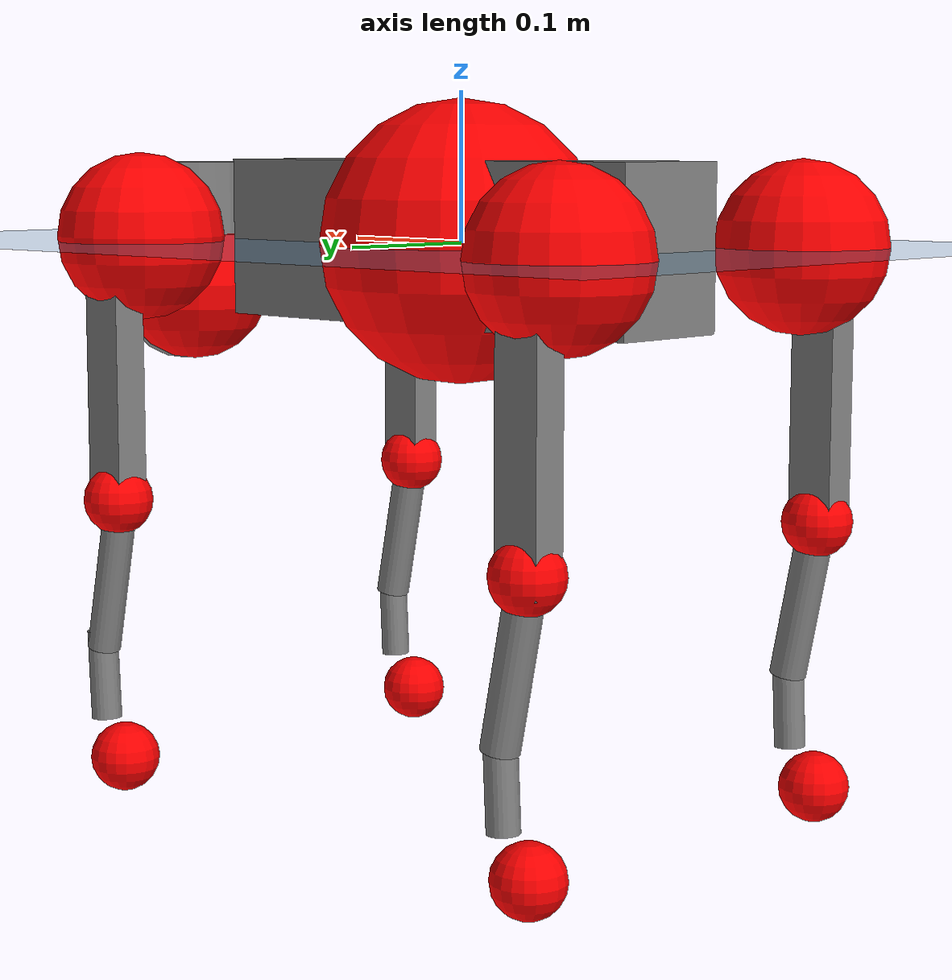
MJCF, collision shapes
<mujoco model="go2">
  <compiler angle="radian" assetdir="assets" balanceinertia="true" inertiafromgeom="false"/>

  <option timestep="0.005" density="1.2" viscosity="2e-05"/>

  <size nkey="1"/>

  <visual>
    <quality shadowsize="8192"/>
    <map shadowclip="0.5"/>
  </visual>

  <default>
    <default class="/">
      <geom contype="0" conaffinity="0" group="1" solref="-1000 -80"/>
      <site size="0.01 0.005 0.005" group="5"/>
      <general forcelimited="true" biastype="affine" gainprm="20" biasprm="0 -20 -0.5"/>
      <default class="go2">
        <joint armature="0.01" damping="0.01" frictionloss="0.2"/>
        <geom condim="1" margin="0.001"/>
        <default class="visual">
          <geom type="mesh" group="2"/>
        </default>
        <default class="collision">
          <geom group="3"/>
          <default class="foot">
            <geom size="0.022 0 0" condim="6" priority="1" friction="0.8 0.02 0.01" solimp="0.015 1 0.022"/>
          </default>
        </default>
        <default class="reward_collision_sphere">
          <geom group="5" rgba="1 0 0 1"/>
        </default>
      </default>
    </default>
  </default>

  <asset>
    <texture type="skybox" colorspace="auto" name="//unnamed_texture_0" builtin="gradient" rgb1="0.95 0.95 0.95" rgb2="0.95 0.95 0.95" width="100" height="600"/>
    <texture type="2d" colorspace="auto" name="texplane" builtin="checker" rgb1="0.345 0.575 0.748" rgb2="0.345 0.575 0.748" markrgb="1 1 1" width="512" height="512"/>
    <material name="MatPlane" class="/" texture="texplane" texuniform="true" texrepeat="2 2" specular="0.9"/>
    <material name="metal" class="/" rgba="0.9 0.95 0.95 1"/>
    <material name="black" class="/" rgba="0 0 0 1"/>
    <material name="white" class="/"/>
    <material name="gray" class="/" rgba="0.671705 0.692426 0.77427 1"/>
    <mesh name="base_0" class="/" file="base_0.obj"/>
    <mesh name="base_1" class="/" file="base_1.obj"/>
    <mesh name="base_2" class="/" file="base_2.obj"/>
    <mesh name="base_3" class="/" file="base_3.obj"/>
    <mesh name="base_4" class="/" file="base_4.obj"/>
    <mesh name="hip_0" class="/" file="hip_0.obj"/>
    <mesh name="hip_1" class="/" file="hip_1.obj"/>
    <mesh name="thigh_0" class="/" file="thigh_0.obj"/>
    <mesh name="thigh_1" class="/" file="thigh_1.obj"/>
    <mesh name="thigh_mirror_0" class="/" file="thigh_mirror_0.obj"/>
    <mesh name="thigh_mirror_1" class="/" file="thigh_mirror_1.obj"/>
    <mesh name="calf_0" class="/" file="calf_0.obj"/>
    <mesh name="calf_1" class="/" file="calf_1.obj"/>
    <mesh name="calf_mirror_0" class="/" file="calf_mirror_0.obj"/>
    <mesh name="calf_mirror_1" class="/" file="calf_mirror_1.obj"/>
    <mesh name="foot" class="/" file="foot.obj"/>
  </asset>

  <worldbody>
    <geom name="floor" class="/" size="100 100 0.125" type="plane" group="0" material="MatPlane"/>
    <light name="toplight_shadow" class="/" pos="0 0 5" dir="0.0990148 0.0990148 -0.990148" type="directional" ambient="0.04 0.04 0.04" diffuse="0.55 0.55 0.55" specular="0.12 0.12 0.12"/>
    <light name="toplight_fill" class="/" pos="0 0 5" dir="0.0990148 0.0990148 -0.990148" type="directional" castshadow="false" ambient="0.04 0.04 0.04" diffuse="0.3 0.3 0.3" specular="0.08 0.08 0.08"/>
    <body name="trunk" childclass="go2" pos="0.000842464 6.04925e-05 0.00057326" quat="1 0.000187399 -0.000318711 0.000213657">
      <inertial pos="0.0213667 -0.000535421 -0.00500744" quat="0.00084747 0.714308 -0.00422405 0.699819" mass="5.98729" diaginertia="0.103109 0.103085 0.0110389"/>
      <joint name="//unnamed_joint_0" type="free" armature="0" damping="0" frictionloss="0"/>
      <geom name="//unnamed_geom_1" class="visual" material="black" mesh="base_0"/>
      <geom name="//unnamed_geom_2" class="visual" material="black" mesh="base_1"/>
      <geom name="//unnamed_geom_3" class="visual" material="black" mesh="base_2"/>
      <geom name="//unnamed_geom_4" class="visual" material="white" mesh="base_3"/>
      <geom name="//unnamed_geom_5" class="visual" material="gray" mesh="base_4"/>
      <geom name="trunk_1" class="collision" size="0.178737 0.044423 0.0541628" type="box"/>
      <geom name="trunk_2" class="collision" size="0.0475113 0.0427601" pos="0.282219 0 0.0085038" type="cylinder"/>
      <geom name="trunk_3" class="collision" size="0.0446606" pos="0.290141 0 -0.0510228"/>
      <geom name="//unnamed_geom_9" class="reward_collision_sphere" size="0.0950225"/>
      <geom name="//unnamed_geom_10" class="reward_collision_sphere" size="0.0570135" pos="0.277268 0 -0.0382671"/>
      <site name="imu" pos="-0.0289403 -0.00313275 0.0354852" size="0.00950225"/>
      <camera name="track" pos="0 -2.0201 0" quat="0.707107 0.707107 0 0" mode="trackcom"/>
      <camera name="ego_camera" pos="0.308956 0 0.0382671" quat="-0.5 -0.5 0.5 0.5"/>
      <body name="FL_hip" pos="0.190775 0.0469836 0.00194088" quat="1 -1.7523e-05 -6.13652e-05 8.56606e-06">
        <inertial pos="-0.00467932 0.00179011 -0.0006262" quat="0.494633 0.502524 0.505065 0.497711" mass="0.58146" diaginertia="0.000841219 0.000625565 0.000211841"/>
        <joint name="FL_hip_joint" pos="0 0 0" axis="1 -0.000205309 -0.000871242" stiffness="0.00308274" range="-1.05025 1.05214" armature="0.00913711" damping="0.00941518" frictionloss="0.188909"/>
        <geom name="//unnamed_geom_11" class="visual" material="metal" mesh="hip_0"/>
        <geom name="//unnamed_geom_12" class="visual" material="gray" mesh="hip_1"/>
        <geom name="//unnamed_geom_13" class="collision" size="0.0437104 0.0190045" pos="0 0.0808041 0" quat="0.707107 0.707107 0 0" type="cylinder"/>
        <geom name="//unnamed_geom_14" class="reward_collision_sphere" size="0.0570135" pos="0 0.0707036 0"/>
        <body name="FL_thigh" pos="-0.000994883 0.0958356 0.00171756" quat="1 5.8401e-06 -1.65312e-05 5.39468e-06">
          <inertial pos="-0.00422839 -0.0224532 -0.0283177" quat="0.828939 0.0840323 -0.0215767 0.552569" mass="0.982854" diaginertia="0.00567268 0.00618277 0.00039184"/>
          <joint name="FL_thigh_joint" pos="0 0 0" axis="-0.00434936 0.999987 -0.00282164" range="-1.56783 3.50399" armature="0.00967316" damping="0.00150316" frictionloss="0.189852"/>
          <geom name="//unnamed_geom_15" class="visual" material="metal" mesh="thigh_0"/>
          <geom name="//unnamed_geom_16" class="visual" material="gray" mesh="thigh_1"/>
          <geom name="//unnamed_geom_17" class="collision" size="0.101199 0.0116403 0.0161538" pos="0 0 -0.0905655" quat="0.707107 0 0.707107 0" type="box"/>
          <body name="FL_calf" pos="-0.000337887 3.9133e-05 -0.181975" quat="1 3.58769e-05 1.37305e-05 8.17018e-05">
            <inertial pos="0.00594223 9.00133e-05 -0.120385" quat="0.710495 0.00126447 -0.00447773 0.703687" mass="0.207385" diaginertia="0.00140713 0.00153341 2.37203e-05"/>
            <joint name="FL_calf_joint" pos="0 0 0" axis="0.0067504 0.999961 0.00566486" range="-2.74103 -0.829051" armature="0.00951424" damping="0.00363822" frictionloss="0.19106"/>
            <geom name="//unnamed_geom_18" class="visual" material="gray" mesh="calf_0"/>
            <geom name="//unnamed_geom_19" class="visual" material="black" mesh="calf_1"/>
            <geom name="FL_calf0" class="collision" size="0.0114027 0.0570135" pos="0.00792195 0 -0.0510228" quat="0.994493 0 -0.104807 0" type="cylinder"/>
            <geom name="//unnamed_geom_21" class="collision" size="0.0104525 0.0308823" pos="0.0198049 0 -0.125856" quat="0.999688 0 0.0249974 0" type="cylinder"/>
            <geom name="//unnamed_geom_22" class="visual" pos="0 0 -0.181131" quat="1 0 0 0" material="black" mesh="foot"/>
            <geom name="FL_foot" class="foot" size="0.0167728" pos="-0.00198049 0 -0.181131"/>
            <geom name="//unnamed_geom_24" class="reward_collision_sphere" size="0.0237556"/>
            <geom name="//unnamed_geom_25" class="reward_collision_sphere" size="0.0237556" pos="-0.00198049 0 -0.181131"/>
            <site name="FL_foot" class="foot" pos="-0.00198049 0 -0.181131" size="0.00950225"/>
          </body>
        </body>
      </body>
      <body name="FR_hip" pos="0.191264 -0.0469899 0.000782502" quat="1 -4.88779e-05 7.20186e-05 0.000106066">
        <inertial pos="-0.00569001 -0.00099773 -0.000526252" quat="0.498135 0.505402 0.499269 0.497153" mass="0.582598" diaginertia="0.000849723 0.000626201 0.000214666"/>
        <joint name="FR_hip_joint" pos="0 0 0" axis="0.999995 -0.00106296 0.00281261" stiffness="0.00279908" range="-1.06616 1.04418" armature="0.00949082" damping="0.0156221" frictionloss="0.192155"/>
        <geom name="//unnamed_geom_26" class="visual" pos="0 1.39099e-09 5.96624e-08" quat="4.63268e-05 1 0 0" material="metal" mesh="hip_0"/>
        <geom name="//unnamed_geom_27" class="visual" pos="0 2.25496e-09 -1.47568e-07" quat="4.63268e-05 1 0 0" material="gray" mesh="hip_1"/>
        <geom name="//unnamed_geom_28" class="collision" size="0.0437104 0.0190045" pos="0 -0.0808041 0" quat="0.707107 0.707107 0 0" type="cylinder"/>
        <geom name="//unnamed_geom_29" class="reward_collision_sphere" size="0.0570135" pos="0 -0.0707036 0"/>
        <body name="FR_thigh" pos="-0.000493163 -0.0958376 0.00151956" quat="1 -5.57428e-05 1.90059e-05 -0.000118516">
          <inertial pos="-0.0036491 0.0226847 -0.027837" quat="0.549961 -0.0174667 0.0834159 0.830831" mass="0.993532" diaginertia="0.00571643 0.00615084 0.000391375"/>
          <joint name="FR_thigh_joint" pos="0 0 0" axis="0.00378913 -0.999992 0.000902814" range="-3.49346 1.55622" armature="0.00981432" damping="0.0132512" frictionloss="0.19467"/>
          <geom name="//unnamed_geom_30" class="visual" material="metal" mesh="thigh_mirror_0"/>
          <geom name="//unnamed_geom_31" class="visual" material="gray" mesh="thigh_mirror_1"/>
          <geom name="//unnamed_geom_32" class="collision" size="0.101199 0.0116403 0.0161538" pos="0 0 -0.0905655" quat="0.707107 0 0.707107 0" type="box"/>
          <body name="FR_calf" pos="-0.00051579 -0.000192413 -0.180858" quat="1 -9.08122e-06 1.3143e-05 1.68285e-06">
            <inertial pos="0.00667613 0.000964903 -0.119744" quat="0.703695 -0.00550935 0.00482219 0.710465" mass="0.207021" diaginertia="0.00140272 0.0015349 2.34585e-05"/>
            <joint name="FR_calf_joint" pos="0 0 0" axis="-0.000958559 -0.999998 -0.00157772" range="0.840228 2.7326" armature="0.00912876" damping="0.00726235" frictionloss="0.18994"/>
            <geom name="//unnamed_geom_33" class="visual" material="gray" mesh="calf_mirror_0"/>
            <geom name="//unnamed_geom_34" class="visual" material="black" mesh="calf_mirror_1"/>
            <geom name="FR_calf0" class="collision" size="0.0123529 0.0570135" pos="0.00990244 0 -0.0510228" quat="0.995004 0 -0.0998334 0" type="cylinder"/>
            <geom name="//unnamed_geom_36" class="collision" size="0.0104525 0.0308823" pos="0.0198049 0 -0.125856" quat="0.999688 0 0.0249974 0" type="cylinder"/>
            <geom name="//unnamed_geom_37" class="visual" pos="0 0 -0.181131" quat="1 0 0 0" material="black" mesh="foot"/>
            <geom name="FR_foot" class="foot" size="0.0224016" pos="-0.00198049 0 -0.181131"/>
            <geom name="//unnamed_geom_39" class="reward_collision_sphere" size="0.0237556"/>
            <geom name="//unnamed_geom_40" class="reward_collision_sphere" size="0.0237556" pos="-0.00198049 0 -0.181131"/>
            <site name="FR_foot" class="foot" pos="-0.00198049 0 -0.181131" size="0.00950225"/>
          </body>
        </body>
      </body>
      <body name="RL_hip" pos="-0.191837 0.0479636 -0.00108226" quat="1 -0.000247444 4.23618e-05 8.79029e-05">
        <inertial pos="0.0053463 0.00238777 -0.000481069" quat="0.505455 0.498277 0.49704 0.499185" mass="0.581572" diaginertia="0.000838696 0.00063424 0.000212935"/>
        <joint name="RL_hip_joint" pos="0 0 0" axis="-0.999847 -0.0133262 0.0113254" stiffness="0.00345849" range="-1.03942 1.04177" armature="0.00944103" damping="0.0114242" frictionloss="0.18826"/>
        <geom name="//unnamed_geom_41" class="visual" pos="-1.21843e-09 0 -2.38841e-07" quat="4.63268e-05 0 1 0" material="metal" mesh="hip_0"/>
        <geom name="//unnamed_geom_42" class="visual" pos="-1.97523e-09 0 -2.11818e-07" quat="4.63268e-05 0 1 0" material="gray" mesh="hip_1"/>
        <geom name="//unnamed_geom_43" class="collision" size="0.0437104 0.0190045" pos="0 0.0808041 0" quat="0.707107 0.707107 0 0" type="cylinder"/>
        <geom name="//unnamed_geom_44" class="reward_collision_sphere" size="0.0570135" pos="0 0.0707036 0"/>
        <body name="RL_thigh" pos="-6.55564e-05 0.0959118 -0.000590317" quat="1 -1.24876e-05 7.86144e-07 8.59893e-06">
          <inertial pos="-0.00328185 -0.0224115 -0.0284706" quat="0.82947 0.0846399 -0.0189288 0.551777" mass="0.982126" diaginertia="0.00564683 0.00613654 0.000390502"/>
          <joint name="RL_thigh_joint" pos="0 0 0" axis="0.000514188 0.999999 0.00104892" range="-0.519766 4.52959" armature="0.00951347" damping="0.0106052" frictionloss="0.188557"/>
          <geom name="//unnamed_geom_45" class="visual" material="metal" mesh="thigh_0"/>
          <geom name="//unnamed_geom_46" class="visual" material="gray" mesh="thigh_1"/>
          <geom name="//unnamed_geom_47" class="collision" size="0.101199 0.0116403 0.0161538" pos="0 0 -0.0905655" quat="0.707107 0 0.707107 0" type="box"/>
          <body name="RL_calf" pos="0.00119644 -0.000729104 -0.180532" quat="1 -5.09628e-05 -0.000117126 -1.71402e-06">
            <inertial pos="0.00549469 0.00036118 -0.120955" quat="0.710825 0.00143097 -0.0012487 0.703366" mass="0.208747" diaginertia="0.00141622 0.00153385 2.35373e-05"/>
            <joint name="RL_calf_joint" pos="0 0 0" axis="-0.00185557 0.999931 -0.0116182" range="-2.71441 -0.835588" armature="0.00949928" damping="0.000820406" frictionloss="0.182705"/>
            <geom name="//unnamed_geom_48" class="visual" material="gray" mesh="calf_0"/>
            <geom name="//unnamed_geom_49" class="visual" material="black" mesh="calf_1"/>
            <geom name="RL_calf0" class="collision" size="0.0123529 0.0570135" pos="0.00990244 0 -0.0510228" quat="0.995004 0 -0.0998334 0" type="cylinder"/>
            <geom name="//unnamed_geom_51" class="collision" size="0.0104525 0.0308823" pos="0.0198049 0 -0.125856" quat="0.999688 0 0.0249974 0" type="cylinder"/>
            <geom name="//unnamed_geom_52" class="visual" pos="0 0 -0.181131" quat="1 0 0 0" material="black" mesh="foot"/>
            <geom name="RL_foot" class="foot" size="0.0186635" pos="-0.00198049 0 -0.181131"/>
            <geom name="//unnamed_geom_54" class="reward_collision_sphere" size="0.0237556"/>
            <geom name="//unnamed_geom_55" class="reward_collision_sphere" size="0.0237556" pos="-0.00198049 0 -0.181131"/>
            <site name="RL_foot" class="foot" pos="-0.00198049 0 -0.181131" size="0.00950225"/>
          </body>
        </body>
      </body>
      <body name="RR_hip" pos="-0.191486 -0.0479591 -0.00128391" quat="1 -0.000109117 -1.69532e-05 -8.17943e-06">
        <inertial pos="0.00536391 -0.00233294 0.000920925" quat="0.499205 0.49694 0.498283 0.505528" mass="0.576682" diaginertia="0.00083485 0.000620455 0.000212153"/>
        <joint name="RR_hip_joint" pos="0 0 0" axis="-0.999994 0.00287014 -0.00168339" stiffness="0.000129253" range="-1.04931 1.0609" armature="0.0098634" damping="0.00515208" frictionloss="0.191203"/>
        <geom name="//unnamed_geom_56" class="visual" pos="1.21912e-09 1.39099e-09 -2.98504e-07" quat="2.14617e-09 4.63268e-05 4.63268e-05 -1" material="metal" mesh="hip_0"/>
        <geom name="//unnamed_geom_57" class="visual" pos="1.97353e-09 2.25496e-09 -6.42503e-08" quat="2.14617e-09 4.63268e-05 4.63268e-05 -1" material="gray" mesh="hip_1"/>
        <geom name="//unnamed_geom_58" class="collision" size="0.0437104 0.0190045" pos="0 -0.0808041 0" quat="0.707107 0.707107 0 0" type="cylinder"/>
        <geom name="//unnamed_geom_59" class="reward_collision_sphere" size="0.0570135" pos="0 -0.0707036 0"/>
        <body name="RR_thigh" pos="0.000499138 -0.096747 -0.00130675" quat="1 -5.57114e-05 -6.66004e-05 -3.28049e-05">
          <inertial pos="-0.00271004 0.021732 -0.0279066" quat="0.551651 -0.0203753 0.0846692 0.829516" mass="1.00304" diaginertia="0.00567951 0.00620555 0.000390557"/>
          <joint name="RR_thigh_joint" pos="0 0 0" axis="-0.00319919 -0.999961 -0.0082594" range="-4.54009 0.520386" armature="0.00950538" damping="0.0143236" frictionloss="0.195284"/>
          <geom name="//unnamed_geom_60" class="visual" material="metal" mesh="thigh_mirror_0"/>
          <geom name="//unnamed_geom_61" class="visual" material="gray" mesh="thigh_mirror_1"/>
          <geom name="//unnamed_geom_62" class="collision" size="0.101199 0.0116403 0.0161538" pos="0 0 -0.0905655" quat="0.707107 0 0.707107 0" type="box"/>
          <body name="RR_calf" pos="0.00114188 -0.000261009 -0.181793" quat="1 -7.28237e-06 9.31998e-06 6.54226e-06">
            <inertial pos="0.00622436 0.000665029 -0.120522" quat="0.703593 -0.00386646 0.00135799 0.710591" mass="0.211365" diaginertia="0.00142621 0.00156102 2.38097e-05"/>
            <joint name="RR_calf_joint" pos="0 0 0" axis="0.00632678 -0.999977 -0.00262247" stiffness="0.000816504" range="0.831201 2.71105" armature="0.00968226" damping="0.0063885" frictionloss="0.188051"/>
            <geom name="//unnamed_geom_63" class="visual" material="gray" mesh="calf_mirror_0"/>
            <geom name="//unnamed_geom_64" class="visual" material="black" mesh="calf_mirror_1"/>
            <geom name="RR_calf0" class="collision" size="0.0123529 0.0570135" pos="0.00990244 0 -0.0510228" quat="0.995004 0 -0.0998334 0" type="cylinder"/>
            <geom name="//unnamed_geom_66" class="collision" size="0.0104525 0.0308823" pos="0.0198049 0 -0.125856" quat="0.999688 0 0.0249974 0" type="cylinder"/>
            <geom name="//unnamed_geom_67" class="visual" pos="0 0 -0.181131" quat="1 0 0 0" material="black" mesh="foot"/>
            <geom name="RR_foot" class="foot" size="0.0225143" pos="-0.00198049 0 -0.181131"/>
            <geom name="//unnamed_geom_69" class="reward_collision_sphere" size="0.0237556"/>
            <geom name="//unnamed_geom_70" class="reward_collision_sphere" size="0.0237556" pos="-0.00198049 0 -0.181131"/>
            <site name="RR_foot" class="foot" pos="-0.00198049 0 -0.181131" size="0.00950225"/>
          </body>
        </body>
      </body>
    </body>
  </worldbody>

  <contact>
    <pair class="/" geom1="floor" geom2="FL_foot" name="//unnamed_contact_0"/>
    <pair class="/" geom1="floor" geom2="FR_foot" name="//unnamed_contact_1"/>
    <pair class="/" geom1="floor" geom2="RL_foot" name="//unnamed_contact_2"/>
    <pair class="/" geom1="floor" geom2="RR_foot" name="//unnamed_contact_3"/>
  </contact>

  <actuator>
    <general name="FL_hip" class="/" joint="FL_hip_joint" forcerange="-22.5921 22.5921" gainprm="18.9454" biasprm="0 -18.9454 -0.469705"/>
    <general name="FL_thigh" class="/" joint="FL_thigh_joint" forcerange="-22.2273 22.2273" gainprm="18.9454" biasprm="0 -18.9454 -0.469705"/>
    <general name="FL_calf" class="/" joint="FL_calf_joint" forcerange="-43.2249 43.2249" gainprm="18.9454" biasprm="0 -18.9454 -0.469705"/>
    <general name="FR_hip" class="/" joint="FR_hip_joint" forcerange="-22.2405 22.2405" gainprm="18.9454" biasprm="0 -18.9454 -0.469705"/>
    <general name="FR_thigh" class="/" joint="FR_thigh_joint" forcerange="-21.7973 21.7973" gainprm="18.9454" biasprm="0 -18.9454 -0.469705"/>
    <general name="FR_calf" class="/" joint="FR_calf_joint" forcerange="-44.5978 44.5978" gainprm="18.9454" biasprm="0 -18.9454 -0.469705"/>
    <general name="RL_hip" class="/" joint="RL_hip_joint" forcerange="-22.5507 22.5507" gainprm="18.9454" biasprm="0 -18.9454 -0.469705"/>
    <general name="RL_thigh" class="/" joint="RL_thigh_joint" forcerange="-22.0818 22.0818" gainprm="18.9454" biasprm="0 -18.9454 -0.469705"/>
    <general name="RL_calf" class="/" joint="RL_calf_joint" forcerange="-42.6952 42.6952" gainprm="18.9454" biasprm="0 -18.9454 -0.469705"/>
    <general name="RR_hip" class="/" joint="RR_hip_joint" forcerange="-22.6071 22.6071" gainprm="18.9454" biasprm="0 -18.9454 -0.469705"/>
    <general name="RR_thigh" class="/" joint="RR_thigh_joint" forcerange="-22.0496 22.0496" gainprm="18.9454" biasprm="0 -18.9454 -0.469705"/>
    <general name="RR_calf" class="/" joint="RR_calf_joint" forcerange="-44.3962 44.3962" gainprm="18.9454" biasprm="0 -18.9454 -0.469705"/>
  </actuator>

  <sensor>
    <gyro site="imu" name="imu_angular_velocity"/>
    <velocimeter site="imu" name="imu_linear_velocity"/>
    <framelinvel objtype="site" objname="FL_foot" name="FL_foot_global_linear_velocity"/>
    <framelinvel objtype="site" objname="FR_foot" name="FR_foot_global_linear_velocity"/>
    <framelinvel objtype="site" objname="RL_foot" name="RL_foot_global_linear_velocity"/>
    <framelinvel objtype="site" objname="RR_foot" name="RR_foot_global_linear_velocity"/>
  </sensor>

  <keyframe>
    <key name="home" qpos="0 0 0.325 1 0 0 0 0.1 0.8 -1.5 -0.1 -0.8 1.5 -0.1 0.8 -1.5 0.1 -0.8 1.5"/>
  </keyframe>
</mujoco>
